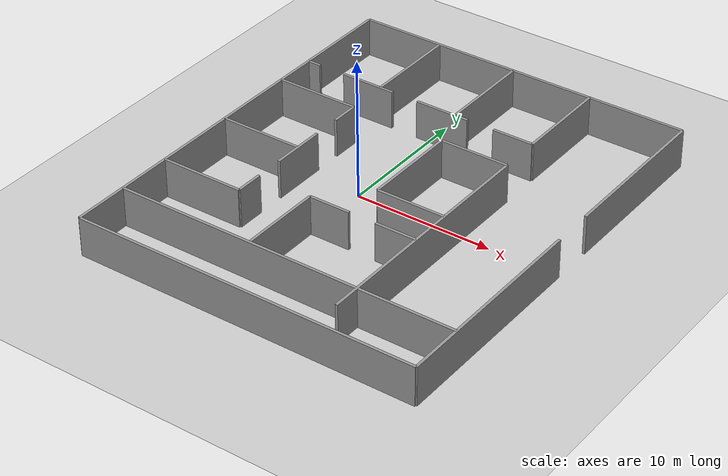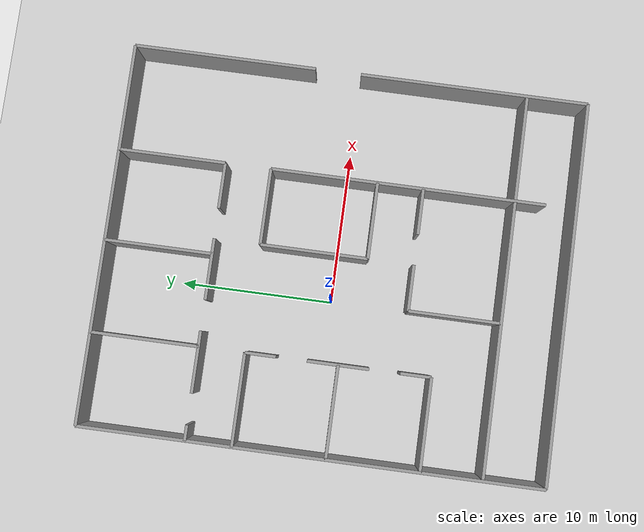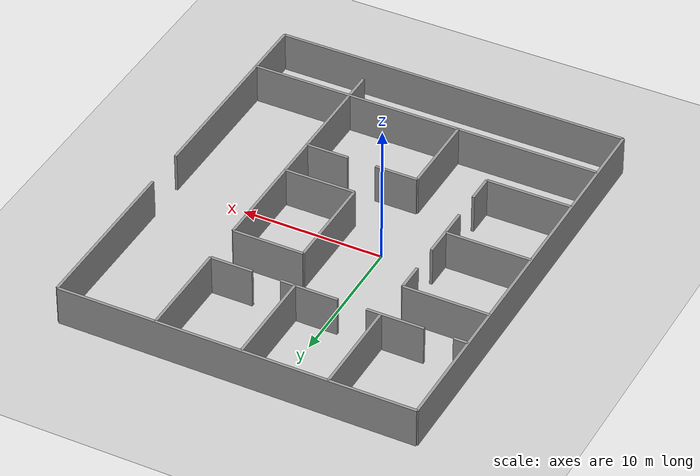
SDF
<sdf version="1.5">
 <world name="default">
  <include><uri>model://ground_plane</uri></include>
  <include><uri>model://sun</uri></include>
  <model name="sick1_collision_model">
   <pose>0 0 -100 0 0 0</pose>
   <static>true</static>
   <link name="link">
    <collision name="link">
     <pose>0 -0.18 0.05 0 -1.5707963267948966 0</pose>
     <geometry><box><size>0.44 1.62 0.60</size></box></geometry>
    </collision>
   </link>
  </model>
  <model name="sick2_collision_model">
   <pose>0 0 -100 0 0 0</pose>
   <static>true</static>
   <link name="link">
    <collision name="link">
     <pose>0 -0.18 0.05 0 -1.5707963267948966 0</pose>
     <geometry><box><size>0.44 1.62 0.60</size></box></geometry>
    </collision>
   </link>
  </model>
  <model name="sick3_collision_model">
   <pose>0 0 -100 0 0 0</pose>
   <static>true</static>
   <link name="link">
    <collision name="link">
     <pose>0 -0.18 0.05 0 -1.5707963267948966 0</pose>
     <geometry><box><size>0.44 1.62 0.60</size></box></geometry>
    </collision>
   </link>
  </model>
  <model name="sick4_collision_model">
   <pose>0 0 -100 0 0 0</pose>
   <static>true</static>
   <link name="link">
    <collision name="link">
     <pose>0 -0.18 0.05 0 -1.5707963267948966 0</pose>
     <geometry><box><size>0.44 1.62 0.60</size></box></geometry>
    </collision>
   </link>
  </model>
  <model name="nurse1_collision_model">
   <pose>0 0 -100 0 0 0</pose>
   <static>true</static>
   <link name="link">
    <collision name="link">
     <pose>0 -0.18 0.05 0 -1.5707963267948966 0</pose>
     <geometry><box><size>0.44 1.62 0.60</size></box></geometry>
    </collision>
   </link>
  </model>
  <model name="nurse2_collision_model">
   <pose>0 0 -100 0 0 0</pose>
   <static>true</static>
   <link name="link">
    <collision name="link">
     <pose>0 -0.18 0.05 0 -1.5707963267948966 0</pose>
     <geometry><box><size>0.44 1.62 0.60</size></box></geometry>
    </collision>
   </link>
  </model>
  <model name="nurse3_collision_model">
   <pose>0 0 -100 0 0 0</pose>
   <static>true</static>
   <link name="link">
    <collision name="link">
     <pose>0 -0.18 0.05 0 -1.5707963267948966 0</pose>
     <geometry><box><size>0.44 1.62 0.60</size></box></geometry>
    </collision>
   </link>
  </model>
  <model name="nurse4_collision_model">
   <pose>0 0 -100 0 0 0</pose>
   <static>true</static>
   <link name="link">
    <collision name="link">
     <pose>0 -0.18 0.05 0 -1.5707963267948966 0</pose>
     <geometry><box><size>0.44 1.62 0.60</size></box></geometry>
    </collision>
   </link>
  </model>
  <model name="nurse5_collision_model">
   <pose>0 0 -100 0 0 0</pose>
   <static>true</static>
   <link name="link">
    <collision name="link">
     <pose>0 -0.18 0.05 0 -1.5707963267948966 0</pose>
     <geometry><box><size>0.44 1.62 0.60</size></box></geometry>
    </collision>
   </link>
  </model>
  <model name="nurse6_collision_model">
   <pose>0 0 -100 0 0 0</pose>
   <static>true</static>
   <link name="link">
    <collision name="link">
     <pose>0 -0.18 0.05 0 -1.5707963267948966 0</pose>
     <geometry><box><size>0.44 1.62 0.60</size></box></geometry>
    </collision>
   </link>
  </model>
  <model name="nurse6_collision_model">
   <pose>0 0 -100 0 0 0</pose>
   <static>true</static>
   <link name="link">
    <collision name="link">
     <pose>0 -0.18 0.05 0 -1.5707963267948966 0</pose>
     <geometry><box><size>0.44 1.62 0.60</size></box></geometry>
    </collision>
   </link>
  </model>
  <model name="grey_wall_1">
   <static>1</static>
   <link name="link">
    <pose>-10.0 0.0  1.4 0 0 1.57</pose>
    <collision name="collision"><geometry><box><size>30.0 .2  2.8</size></box></geometry></collision>
    <visual name="visual">
     <cast_shadows>0</cast_shadows>
     <geometry><box><size>30.0 .2  2.8</size></box></geometry>
     <material>
      <script>
       <uri>model://grey_wall/materials/scripts</uri>
       <uri>model://grey_wall/materials/textures</uri>
       <name>vrc/grey_wall</name>
      </script>
     </material>
    </visual>
   </link>
  </model>
  <model name="grey_wall_2">
   <static>1</static>
   <link name="link">
    <pose>2.5 -15.0  1.4 0 0 0.0</pose>
    <collision name="collision"><geometry><box><size>25.0 .2  2.8</size></box></geometry></collision>
    <visual name="visual">
     <cast_shadows>0</cast_shadows>
     <geometry><box><size>25.0 .2  2.8</size></box></geometry>
     <material>
      <script>
       <uri>model://grey_wall/materials/scripts</uri>
       <uri>model://grey_wall/materials/textures</uri>
       <name>vrc/grey_wall</name>
      </script>
     </material>
    </visual>
   </link>
  </model>
  <model name="grey_wall_3">
   <static>1</static>
   <link name="link">
    <pose>2.5 15.0  1.4 0 0 -0.0</pose>
    <collision name="collision"><geometry><box><size>25.0 .2  2.8</size></box></geometry></collision>
    <visual name="visual">
     <cast_shadows>0</cast_shadows>
     <geometry><box><size>25.0 .2  2.8</size></box></geometry>
     <material>
      <script>
       <uri>model://grey_wall/materials/scripts</uri>
       <uri>model://grey_wall/materials/textures</uri>
       <name>vrc/grey_wall</name>
      </script>
     </material>
    </visual>
   </link>
  </model>
  <model name="grey_wall_4">
   <static>1</static>
   <link name="link">
    <pose>15.0 9.0  1.4 0 0 1.57</pose>
    <collision name="collision"><geometry><box><size>12.0 .2  2.8</size></box></geometry></collision>
    <visual name="visual">
     <cast_shadows>0</cast_shadows>
     <geometry><box><size>12.0 .2  2.8</size></box></geometry>
     <material>
      <script>
       <uri>model://grey_wall/materials/scripts</uri>
       <uri>model://grey_wall/materials/textures</uri>
       <name>vrc/grey_wall</name>
      </script>
     </material>
    </visual>
   </link>
  </model>
  <model name="grey_wall_5">
   <static>1</static>
   <link name="link">
    <pose>15.0 -7.5  1.4 0 0 1.57</pose>
    <collision name="collision"><geometry><box><size>15.0 .2  2.8</size></box></geometry></collision>
    <visual name="visual">
     <cast_shadows>0</cast_shadows>
     <geometry><box><size>15.0 .2  2.8</size></box></geometry>
     <material>
      <script>
       <uri>model://grey_wall/materials/scripts</uri>
       <uri>model://grey_wall/materials/textures</uri>
       <name>vrc/grey_wall</name>
      </script>
     </material>
    </visual>
   </link>
  </model>
  <model name="grey_wall_6">
   <static>1</static>
   <link name="link">
    <pose>8.0 11.5  1.4 0 0 1.57</pose>
    <collision name="collision"><geometry><box><size>7.0 .2  2.8</size></box></geometry></collision>
    <visual name="visual">
     <cast_shadows>0</cast_shadows>
     <geometry><box><size>7.0 .2  2.8</size></box></geometry>
     <material>
      <script>
       <uri>model://grey_wall/materials/scripts</uri>
       <uri>model://grey_wall/materials/textures</uri>
       <name>vrc/grey_wall</name>
      </script>
     </material>
    </visual>
   </link>
  </model>
  <model name="grey_wall_7">
   <static>1</static>
   <link name="link">
    <pose>8.0 -4.0  1.4 0 0 1.57</pose>
    <collision name="collision"><geometry><box><size>18.0 .2  2.8</size></box></geometry></collision>
    <visual name="visual">
     <cast_shadows>0</cast_shadows>
     <geometry><box><size>18.0 .2  2.8</size></box></geometry>
     <material>
      <script>
       <uri>model://grey_wall/materials/scripts</uri>
       <uri>model://grey_wall/materials/textures</uri>
       <name>vrc/grey_wall</name>
      </script>
     </material>
    </visual>
   </link>
  </model>
  <model name="grey_wall_8">
   <static>1</static>
   <link name="link">
    <pose>-9.5 8.0  1.4 0 0 -0.0</pose>
    <collision name="collision"><geometry><box><size>1.0 .2  2.8</size></box></geometry></collision>
    <visual name="visual">
     <cast_shadows>0</cast_shadows>
     <geometry><box><size>1.0 .2  2.8</size></box></geometry>
     <material>
      <script>
       <uri>model://grey_wall/materials/scripts</uri>
       <uri>model://grey_wall/materials/textures</uri>
       <name>vrc/grey_wall</name>
      </script>
     </material>
    </visual>
   </link>
  </model>
  <model name="grey_wall_9">
   <static>1</static>
   <link name="link">
    <pose>-5.0 8.0  1.4 0 0 -0.0</pose>
    <collision name="collision"><geometry><box><size>4.0 .2  2.8</size></box></geometry></collision>
    <visual name="visual">
     <cast_shadows>0</cast_shadows>
     <geometry><box><size>4.0 .2  2.8</size></box></geometry>
     <material>
      <script>
       <uri>model://grey_wall/materials/scripts</uri>
       <uri>model://grey_wall/materials/textures</uri>
       <name>vrc/grey_wall</name>
      </script>
     </material>
    </visual>
   </link>
  </model>
  <model name="grey_wall_10">
   <static>1</static>
   <link name="link">
    <pose>1.0 8.0  1.4 0 0 0.0</pose>
    <collision name="collision"><geometry><box><size>4.0 .2  2.8</size></box></geometry></collision>
    <visual name="visual">
     <cast_shadows>0</cast_shadows>
     <geometry><box><size>4.0 .2  2.8</size></box></geometry>
     <material>
      <script>
       <uri>model://grey_wall/materials/scripts</uri>
       <uri>model://grey_wall/materials/textures</uri>
       <name>vrc/grey_wall</name>
      </script>
     </material>
    </visual>
   </link>
  </model>
  <model name="grey_wall_11">
   <static>1</static>
   <link name="link">
    <pose>6.5 8.0  1.4 0 0 0.0</pose>
    <collision name="collision"><geometry><box><size>3.0 .2  2.8</size></box></geometry></collision>
    <visual name="visual">
     <cast_shadows>0</cast_shadows>
     <geometry><box><size>3.0 .2  2.8</size></box></geometry>
     <material>
      <script>
       <uri>model://grey_wall/materials/scripts</uri>
       <uri>model://grey_wall/materials/textures</uri>
       <name>vrc/grey_wall</name>
      </script>
     </material>
    </visual>
   </link>
  </model>
  <model name="grey_wall_12">
   <static>1</static>
   <link name="link">
    <pose>-4.0 11.5  1.4 0 0 1.57</pose>
    <collision name="collision"><geometry><box><size>7.0 .2  2.8</size></box></geometry></collision>
    <visual name="visual">
     <cast_shadows>0</cast_shadows>
     <geometry><box><size>7.0 .2  2.8</size></box></geometry>
     <material>
      <script>
       <uri>model://grey_wall/materials/scripts</uri>
       <uri>model://grey_wall/materials/textures</uri>
       <name>vrc/grey_wall</name>
      </script>
     </material>
    </visual>
   </link>
  </model>
  <model name="grey_wall_13">
   <static>1</static>
   <link name="link">
    <pose>2.0 11.5  1.4 0 0 1.57</pose>
    <collision name="collision"><geometry><box><size>7.0 .2  2.8</size></box></geometry></collision>
    <visual name="visual">
     <cast_shadows>0</cast_shadows>
     <geometry><box><size>7.0 .2  2.8</size></box></geometry>
     <material>
      <script>
       <uri>model://grey_wall/materials/scripts</uri>
       <uri>model://grey_wall/materials/textures</uri>
       <name>vrc/grey_wall</name>
      </script>
     </material>
    </visual>
   </link>
  </model>
  <model name="grey_wall_14">
   <static>1</static>
   <link name="link">
    <pose>-7.0 5.0  1.4 0 0 0.0</pose>
    <collision name="collision"><geometry><box><size>6.0 .2  2.8</size></box></geometry></collision>
    <visual name="visual">
     <cast_shadows>0</cast_shadows>
     <geometry><box><size>6.0 .2  2.8</size></box></geometry>
     <material>
      <script>
       <uri>model://grey_wall/materials/scripts</uri>
       <uri>model://grey_wall/materials/textures</uri>
       <name>vrc/grey_wall</name>
      </script>
     </material>
    </visual>
   </link>
  </model>
  <model name="grey_wall_15">
   <static>1</static>
   <link name="link">
    <pose>-4.0 4.0  1.4 0 0 1.57</pose>
    <collision name="collision"><geometry><box><size>2.0 .2  2.8</size></box></geometry></collision>
    <visual name="visual">
     <cast_shadows>0</cast_shadows>
     <geometry><box><size>2.0 .2  2.8</size></box></geometry>
     <material>
      <script>
       <uri>model://grey_wall/materials/scripts</uri>
       <uri>model://grey_wall/materials/textures</uri>
       <name>vrc/grey_wall</name>
      </script>
     </material>
    </visual>
   </link>
  </model>
  <model name="grey_wall_16">
   <static>1</static>
   <link name="link">
    <pose>-4.0 -1.0  1.4 0 0 1.57</pose>
    <collision name="collision"><geometry><box><size>4.0 .2  2.8</size></box></geometry></collision>
    <visual name="visual">
     <cast_shadows>0</cast_shadows>
     <geometry><box><size>4.0 .2  2.8</size></box></geometry>
     <material>
      <script>
       <uri>model://grey_wall/materials/scripts</uri>
       <uri>model://grey_wall/materials/textures</uri>
       <name>vrc/grey_wall</name>
      </script>
     </material>
    </visual>
   </link>
  </model>
  <model name="grey_wall_17">
   <static>1</static>
   <link name="link">
    <pose>-4.0 -6.0  1.4 0 0 1.57</pose>
    <collision name="collision"><geometry><box><size>2.0 .2  2.8</size></box></geometry></collision>
    <visual name="visual">
     <cast_shadows>0</cast_shadows>
     <geometry><box><size>2.0 .2  2.8</size></box></geometry>
     <material>
      <script>
       <uri>model://grey_wall/materials/scripts</uri>
       <uri>model://grey_wall/materials/textures</uri>
       <name>vrc/grey_wall</name>
      </script>
     </material>
    </visual>
   </link>
  </model>
  <model name="grey_wall_18">
   <static>1</static>
   <link name="link">
    <pose>5.5 5.0  1.4 0 0 -0.0</pose>
    <collision name="collision"><geometry><box><size>5.0 .2  2.8</size></box></geometry></collision>
    <visual name="visual">
     <cast_shadows>0</cast_shadows>
     <geometry><box><size>5.0 .2  2.8</size></box></geometry>
     <material>
      <script>
       <uri>model://grey_wall/materials/scripts</uri>
       <uri>model://grey_wall/materials/textures</uri>
       <name>vrc/grey_wall</name>
      </script>
     </material>
    </visual>
   </link>
  </model>
  <model name="grey_wall_19">
   <static>1</static>
   <link name="link">
    <pose>3.0 1.5  1.4 0 0 1.57</pose>
    <collision name="collision"><geometry><box><size>7.0 .2  2.8</size></box></geometry></collision>
    <visual name="visual">
     <cast_shadows>0</cast_shadows>
     <geometry><box><size>7.0 .2  2.8</size></box></geometry>
     <material>
      <script>
       <uri>model://grey_wall/materials/scripts</uri>
       <uri>model://grey_wall/materials/textures</uri>
       <name>vrc/grey_wall</name>
      </script>
     </material>
    </visual>
   </link>
  </model>
  <model name="grey_wall_20">
   <static>1</static>
   <link name="link">
    <pose>5.5 -2.0  1.4 0 0 0.0</pose>
    <collision name="collision"><geometry><box><size>5.0 .2  2.8</size></box></geometry></collision>
    <visual name="visual">
     <cast_shadows>0</cast_shadows>
     <geometry><box><size>5.0 .2  2.8</size></box></geometry>
     <material>
      <script>
       <uri>model://grey_wall/materials/scripts</uri>
       <uri>model://grey_wall/materials/textures</uri>
       <name>vrc/grey_wall</name>
      </script>
     </material>
    </visual>
   </link>
  </model>
  <model name="grey_wall_21">
   <static>1</static>
   <link name="link">
    <pose>-7.0 -1.0  1.4 0 0 -0.0</pose>
    <collision name="collision"><geometry><box><size>6.0 .2  2.8</size></box></geometry></collision>
    <visual name="visual">
     <cast_shadows>0</cast_shadows>
     <geometry><box><size>6.0 .2  2.8</size></box></geometry>
     <material>
      <script>
       <uri>model://grey_wall/materials/scripts</uri>
       <uri>model://grey_wall/materials/textures</uri>
       <name>vrc/grey_wall</name>
      </script>
     </material>
    </visual>
   </link>
  </model>
  <model name="grey_wall_22">
   <static>1</static>
   <link name="link">
    <pose>-7.0 -7.0  1.4 0 0 -0.0</pose>
    <collision name="collision"><geometry><box><size>6.0 .2  2.8</size></box></geometry></collision>
    <visual name="visual">
     <cast_shadows>0</cast_shadows>
     <geometry><box><size>6.0 .2  2.8</size></box></geometry>
     <material>
      <script>
       <uri>model://grey_wall/materials/scripts</uri>
       <uri>model://grey_wall/materials/textures</uri>
       <name>vrc/grey_wall</name>
      </script>
     </material>
    </visual>
   </link>
  </model>
  <model name="grey_wall_23">
   <static>1</static>
   <link name="link">
    <pose>1.5 -5.0  1.4 0 0 -0.0</pose>
    <collision name="collision"><geometry><box><size>3.0 .2  2.8</size></box></geometry></collision>
    <visual name="visual">
     <cast_shadows>0</cast_shadows>
     <geometry><box><size>3.0 .2  2.8</size></box></geometry>
     <material>
      <script>
       <uri>model://grey_wall/materials/scripts</uri>
       <uri>model://grey_wall/materials/textures</uri>
       <name>vrc/grey_wall</name>
      </script>
     </material>
    </visual>
   </link>
  </model>
  <model name="grey_wall_24">
   <static>1</static>
   <link name="link">
    <pose>6.5 -5.0  1.4 0 0 0.0</pose>
    <collision name="collision"><geometry><box><size>3.0 .2  2.8</size></box></geometry></collision>
    <visual name="visual">
     <cast_shadows>0</cast_shadows>
     <geometry><box><size>3.0 .2  2.8</size></box></geometry>
     <material>
      <script>
       <uri>model://grey_wall/materials/scripts</uri>
       <uri>model://grey_wall/materials/textures</uri>
       <name>vrc/grey_wall</name>
      </script>
     </material>
    </visual>
   </link>
  </model>
  <model name="grey_wall_25">
   <static>1</static>
   <link name="link">
    <pose>0.0 -8.0  1.4 0 0 1.57</pose>
    <collision name="collision"><geometry><box><size>6.0 .2  2.8</size></box></geometry></collision>
    <visual name="visual">
     <cast_shadows>0</cast_shadows>
     <geometry><box><size>6.0 .2  2.8</size></box></geometry>
     <material>
      <script>
       <uri>model://grey_wall/materials/scripts</uri>
       <uri>model://grey_wall/materials/textures</uri>
       <name>vrc/grey_wall</name>
      </script>
     </material>
    </visual>
   </link>
  </model>
  <model name="grey_wall_26">
   <static>1</static>
   <link name="link">
    <pose>2.5 -11.0  1.4 0 0 -0.0</pose>
    <collision name="collision"><geometry><box><size>25.0 .2  2.8</size></box></geometry></collision>
    <visual name="visual">
     <cast_shadows>0</cast_shadows>
     <geometry><box><size>25.0 .2  2.8</size></box></geometry>
     <material>
      <script>
       <uri>model://grey_wall/materials/scripts</uri>
       <uri>model://grey_wall/materials/textures</uri>
       <name>vrc/grey_wall</name>
      </script>
     </material>
    </visual>
   </link>
  </model>
  <plugin name="ActorPosesPlugin" filename="libActorPosesPlugin.so"/>
 </world>
</sdf>
